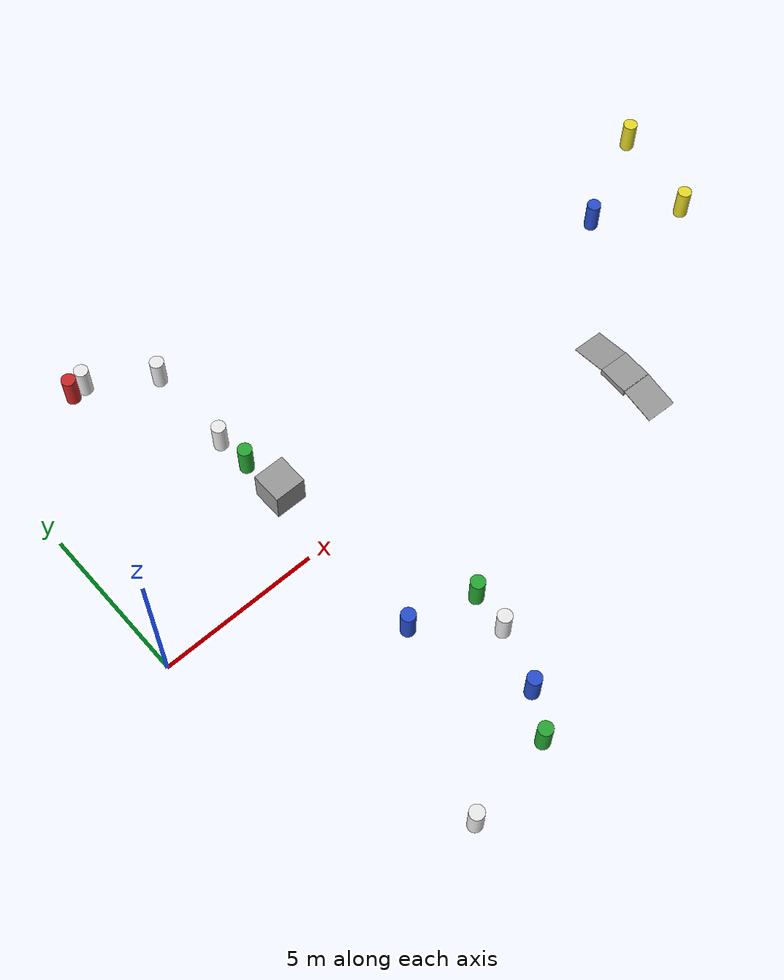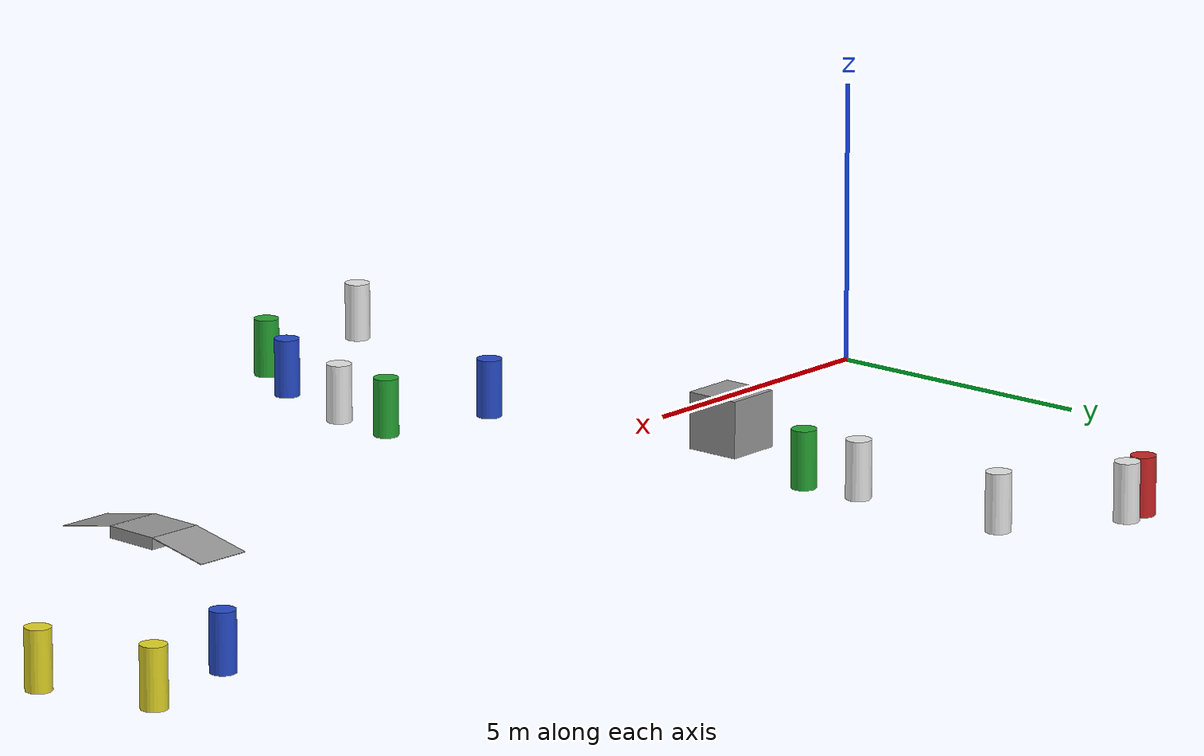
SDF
<sdf version="1.10">
 <world name="IGVC_AutoNav">
  <model name="barrel">
   <link name="link">
    <inertial>
     <mass>1</mass>
     <inertia>
      <ixx>0.14583299999999999</ixx>
      <ixy>0</ixy>
      <ixz>0</ixz>
      <iyy>0.14583299999999999</iyy>
      <iyz>0</iyz>
      <izz>0.125</izz>
     </inertia>
    </inertial>
    <visual name="visual">
     <geometry><cylinder><radius>0.222916</radius><length>1.0356700000000001</length></cylinder></geometry>
     <material>
      <script><name>Gazebo/Blue</name><uri>file://media/materials/scripts/gazebo.material</uri></script>
      <shader type="pixel"/>
     </material>
    </visual>
    <collision name="collision">
     <geometry><cylinder><radius>0.222916</radius><length>1.0356700000000001</length></cylinder></geometry>
     <surface>
      <friction>
       <ode><mu>1</mu><mu2>1</mu2><fdir1>0 0 0</fdir1><slip1>0</slip1><slip2>0</slip2></ode>
       <torsional>
        <coefficient>1</coefficient>
        <patch_radius>0</patch_radius>
        <surface_radius>0</surface_radius>
        <use_patch_radius>true</use_patch_radius>
        <ode><slip>0</slip></ode>
       </torsional>
      </friction>
      <bounce><restitution_coefficient>0</restitution_coefficient><threshold>1000000</threshold></bounce>
      <contact>
       <collide_without_contact>false</collide_without_contact>
       <collide_without_contact_bitmask>1</collide_without_contact_bitmask>
       <collide_bitmask>1</collide_bitmask>
       <ode>
        <soft_cfm>0</soft_cfm>
        <soft_erp>0.20000000000000001</soft_erp>
        <kp>10000000000000</kp>
        <kd>1</kd>
        <max_vel>0.01</max_vel>
        <min_depth>0</min_depth>
       </ode>
       <bullet>
        <split_impulse>true</split_impulse>
        <split_impulse_penetration_threshold>-0.01</split_impulse_penetration_threshold>
        <soft_cfm>0</soft_cfm>
        <soft_erp>0.20000000000000001</soft_erp>
        <kp>10000000000000</kp>
        <kd>1</kd>
       </bullet>
      </contact>
     </surface>
    </collision>
   </link>
   <static>false</static>
   <pose>7.06515 -6.9198300000000001 0.10701116576754102 7.4044332592144963e-18 1.7219624782401964e-16 1.8080497611149083e-19</pose>
  </model>
  <model name="barrel_0">
   <link name="link">
    <inertial>
     <mass>1</mass>
     <inertia>
      <ixx>0.14583299999999999</ixx>
      <ixy>0</ixy>
      <ixz>0</ixz>
      <iyy>0.14583299999999999</iyy>
      <iyz>0</iyz>
      <izz>0.125</izz>
     </inertia>
    </inertial>
    <visual name="visual">
     <geometry><cylinder><radius>0.222916</radius><length>1.0356700000000001</length></cylinder></geometry>
     <material>
      <script><name>Gazebo/Green</name><uri>file://media/materials/scripts/gazebo.material</uri></script>
      <shader type="pixel"/>
     </material>
    </visual>
    <collision name="collision">
     <geometry><cylinder><radius>0.222916</radius><length>1.0356700000000001</length></cylinder></geometry>
     <surface>
      <friction>
       <ode><mu>1</mu><mu2>1</mu2><fdir1>0 0 0</fdir1><slip1>0</slip1><slip2>0</slip2></ode>
       <torsional>
        <coefficient>1</coefficient>
        <patch_radius>0</patch_radius>
        <surface_radius>0</surface_radius>
        <use_patch_radius>true</use_patch_radius>
        <ode><slip>0</slip></ode>
       </torsional>
      </friction>
      <bounce><restitution_coefficient>0</restitution_coefficient><threshold>1000000</threshold></bounce>
      <contact>
       <collide_without_contact>false</collide_without_contact>
       <collide_without_contact_bitmask>1</collide_without_contact_bitmask>
       <collide_bitmask>1</collide_bitmask>
       <ode>
        <soft_cfm>0</soft_cfm>
        <soft_erp>0.20000000000000001</soft_erp>
        <kp>10000000000000</kp>
        <kd>1</kd>
        <max_vel>0.01</max_vel>
        <min_depth>0</min_depth>
       </ode>
       <bullet>
        <split_impulse>true</split_impulse>
        <split_impulse_penetration_threshold>-0.01</split_impulse_penetration_threshold>
        <soft_cfm>0</soft_cfm>
        <soft_erp>0.20000000000000001</soft_erp>
        <kp>10000000000000</kp>
        <kd>1</kd>
       </bullet>
      </contact>
     </surface>
    </collision>
   </link>
   <static>false</static>
   <pose>6.2997100000000001 -8.1233199999999997 0.1070131657332605 -1.157209345317784e-16 4.7496134980464341e-17 1.1440392333610301e-18</pose>
  </model>
  <model name="barrel_3">
   <link name="link">
    <inertial>
     <mass>1</mass>
     <inertia>
      <ixx>0.14583299999999999</ixx>
      <ixy>0</ixy>
      <ixz>0</ixz>
      <iyy>0.14583299999999999</iyy>
      <iyz>0</iyz>
      <izz>0.125</izz>
     </inertia>
    </inertial>
    <visual name="visual">
     <geometry><cylinder><radius>0.222916</radius><length>1.0356700000000001</length></cylinder></geometry>
     <material>
      <script><name>Gazebo/White</name><uri>file://media/materials/scripts/gazebo.material</uri></script>
      <shader type="pixel"/>
     </material>
    </visual>
    <collision name="collision">
     <geometry><cylinder><radius>0.222916</radius><length>1.0356700000000001</length></cylinder></geometry>
     <surface>
      <friction>
       <ode><mu>1</mu><mu2>1</mu2><fdir1>0 0 0</fdir1><slip1>0</slip1><slip2>0</slip2></ode>
       <torsional>
        <coefficient>1</coefficient>
        <patch_radius>0</patch_radius>
        <surface_radius>0</surface_radius>
        <use_patch_radius>true</use_patch_radius>
        <ode><slip>0</slip></ode>
       </torsional>
      </friction>
      <bounce><restitution_coefficient>0</restitution_coefficient><threshold>1000000</threshold></bounce>
      <contact>
       <collide_without_contact>false</collide_without_contact>
       <collide_without_contact_bitmask>1</collide_without_contact_bitmask>
       <collide_bitmask>1</collide_bitmask>
       <ode>
        <soft_cfm>0</soft_cfm>
        <soft_erp>0.20000000000000001</soft_erp>
        <kp>10000000000000</kp>
        <kd>1</kd>
        <max_vel>0.01</max_vel>
        <min_depth>0</min_depth>
       </ode>
       <bullet>
        <split_impulse>true</split_impulse>
        <split_impulse_penetration_threshold>-0.01</split_impulse_penetration_threshold>
        <soft_cfm>0</soft_cfm>
        <soft_erp>0.20000000000000001</soft_erp>
        <kp>10000000000000</kp>
        <kd>1</kd>
       </bullet>
      </contact>
     </surface>
    </collision>
   </link>
   <static>false</static>
   <pose>3.4230399999999999 -8.5684799999999992 0.10701516569897998 -1.1385295535115525e-16 -1.0134606897383649e-16 1.4112806861779908e-19</pose>
  </model>
  <model name="barrel_24">
   <link name="link">
    <inertial>
     <mass>1</mass>
     <inertia>
      <ixx>0.14583299999999999</ixx>
      <ixy>0</ixy>
      <ixz>0</ixz>
      <iyy>0.14583299999999999</iyy>
      <iyz>0</iyz>
      <izz>0.125</izz>
     </inertia>
    </inertial>
    <visual name="visual">
     <geometry><cylinder><radius>0.222916</radius><length>1.0356700000000001</length></cylinder></geometry>
     <material>
      <script><name>Gazebo/White</name><uri>file://media/materials/scripts/gazebo.material</uri></script>
      <shader type="pixel"/>
     </material>
    </visual>
    <collision name="collision">
     <geometry><cylinder><radius>0.222916</radius><length>1.0356700000000001</length></cylinder></geometry>
     <surface>
      <friction>
       <ode><mu>1</mu><mu2>1</mu2><fdir1>0 0 0</fdir1><slip1>0</slip1><slip2>0</slip2></ode>
       <torsional>
        <coefficient>1</coefficient>
        <patch_radius>0</patch_radius>
        <surface_radius>0</surface_radius>
        <use_patch_radius>true</use_patch_radius>
        <ode><slip>0</slip></ode>
       </torsional>
      </friction>
      <bounce><restitution_coefficient>0</restitution_coefficient><threshold>1000000</threshold></bounce>
      <contact>
       <collide_without_contact>false</collide_without_contact>
       <collide_without_contact_bitmask>1</collide_without_contact_bitmask>
       <collide_bitmask>1</collide_bitmask>
       <ode>
        <soft_cfm>0</soft_cfm>
        <soft_erp>0.20000000000000001</soft_erp>
        <kp>10000000000000</kp>
        <kd>1</kd>
        <max_vel>0.01</max_vel>
        <min_depth>0</min_depth>
       </ode>
       <bullet>
        <split_impulse>true</split_impulse>
        <split_impulse_penetration_threshold>-0.01</split_impulse_penetration_threshold>
        <soft_cfm>0</soft_cfm>
        <soft_erp>0.20000000000000001</soft_erp>
        <kp>10000000000000</kp>
        <kd>1</kd>
       </bullet>
      </contact>
     </surface>
    </collision>
   </link>
   <static>false</static>
   <pose>5.5689799999999998 7.7809699999999999 0.10704316521905269 -9.7909261086596481e-17 -1.6874608648344901e-16 3.6073992035923793e-19</pose>
  </model>
  <model name="barrel_27">
   <link name="link">
    <inertial>
     <mass>1</mass>
     <inertia>
      <ixx>0.14583299999999999</ixx>
      <ixy>0</ixy>
      <ixz>0</ixz>
      <iyy>0.14583299999999999</iyy>
      <iyz>0</iyz>
      <izz>0.125</izz>
     </inertia>
    </inertial>
    <visual name="visual">
     <geometry><cylinder><radius>0.222916</radius><length>1.0356700000000001</length></cylinder></geometry>
     <material>
      <script><name>Gazebo/Red</name><uri>file://media/materials/scripts/gazebo.material</uri></script>
      <shader type="pixel"/>
     </material>
    </visual>
    <collision name="collision">
     <geometry><cylinder><radius>0.222916</radius><length>1.0356700000000001</length></cylinder></geometry>
     <surface>
      <friction>
       <ode><mu>1</mu><mu2>1</mu2><fdir1>0 0 0</fdir1><slip1>0</slip1><slip2>0</slip2></ode>
       <torsional>
        <coefficient>1</coefficient>
        <patch_radius>0</patch_radius>
        <surface_radius>0</surface_radius>
        <use_patch_radius>true</use_patch_radius>
        <ode><slip>0</slip></ode>
       </torsional>
      </friction>
      <bounce><restitution_coefficient>0</restitution_coefficient><threshold>1000000</threshold></bounce>
      <contact>
       <collide_without_contact>false</collide_without_contact>
       <collide_without_contact_bitmask>1</collide_without_contact_bitmask>
       <collide_bitmask>1</collide_bitmask>
       <ode>
        <soft_cfm>0</soft_cfm>
        <soft_erp>0.20000000000000001</soft_erp>
        <kp>10000000000000</kp>
        <kd>1</kd>
        <max_vel>0.01</max_vel>
        <min_depth>0</min_depth>
       </ode>
       <bullet>
        <split_impulse>true</split_impulse>
        <split_impulse_penetration_threshold>-0.01</split_impulse_penetration_threshold>
        <soft_cfm>0</soft_cfm>
        <soft_erp>0.20000000000000001</soft_erp>
        <kp>10000000000000</kp>
        <kd>1</kd>
       </bullet>
      </contact>
     </surface>
    </collision>
   </link>
   <static>false</static>
   <pose>3.2216999999999998 9.0043100000000003 0.10704716515049165 -2.1990650078509022e-16 -2.2904649029452029e-17 1.7148494676408444e-18</pose>
  </model>
  <model name="barrel_28">
   <link name="link">
    <inertial>
     <mass>1</mass>
     <inertia>
      <ixx>0.14583299999999999</ixx>
      <ixy>0</ixy>
      <ixz>0</ixz>
      <iyy>0.14583299999999999</iyy>
      <iyz>0</iyz>
      <izz>0.125</izz>
     </inertia>
    </inertial>
    <visual name="visual">
     <geometry><cylinder><radius>0.222916</radius><length>1.0356700000000001</length></cylinder></geometry>
     <material>
      <script><name>Gazebo/White</name><uri>file://media/materials/scripts/gazebo.material</uri></script>
      <shader type="pixel"/>
     </material>
    </visual>
    <collision name="collision">
     <geometry><cylinder><radius>0.222916</radius><length>1.0356700000000001</length></cylinder></geometry>
     <surface>
      <friction>
       <ode><mu>1</mu><mu2>1</mu2><fdir1>0 0 0</fdir1><slip1>0</slip1><slip2>0</slip2></ode>
       <torsional>
        <coefficient>1</coefficient>
        <patch_radius>0</patch_radius>
        <surface_radius>0</surface_radius>
        <use_patch_radius>true</use_patch_radius>
        <ode><slip>0</slip></ode>
       </torsional>
      </friction>
      <bounce><restitution_coefficient>0</restitution_coefficient><threshold>1000000</threshold></bounce>
      <contact>
       <collide_without_contact>false</collide_without_contact>
       <collide_without_contact_bitmask>1</collide_without_contact_bitmask>
       <collide_bitmask>1</collide_bitmask>
       <ode>
        <soft_cfm>0</soft_cfm>
        <soft_erp>0.20000000000000001</soft_erp>
        <kp>10000000000000</kp>
        <kd>1</kd>
        <max_vel>0.01</max_vel>
        <min_depth>0</min_depth>
       </ode>
       <bullet>
        <split_impulse>true</split_impulse>
        <split_impulse_penetration_threshold>-0.01</split_impulse_penetration_threshold>
        <soft_cfm>0</soft_cfm>
        <soft_erp>0.20000000000000001</soft_erp>
        <kp>10000000000000</kp>
        <kd>1</kd>
       </bullet>
      </contact>
     </surface>
    </collision>
   </link>
   <static>false</static>
   <pose>3.68913 9.0244900000000001 0.10704916511621113 -1.2033052093565336e-16 -2.3522137488015187e-16 -3.1454808388678424e-19</pose>
  </model>
  <model name="barrel_30">
   <link name="link">
    <inertial>
     <mass>1</mass>
     <inertia>
      <ixx>0.14583299999999999</ixx>
      <ixy>0</ixy>
      <ixz>0</ixz>
      <iyy>0.14583299999999999</iyy>
      <iyz>0</iyz>
      <izz>0.125</izz>
     </inertia>
    </inertial>
    <visual name="visual">
     <geometry><cylinder><radius>0.222916</radius><length>1.0356700000000001</length></cylinder></geometry>
     <material>
      <script><name>Gazebo/Green</name><uri>file://media/materials/scripts/gazebo.material</uri></script>
      <shader type="pixel"/>
     </material>
    </visual>
    <collision name="collision">
     <geometry><cylinder><radius>0.222916</radius><length>1.0356700000000001</length></cylinder></geometry>
     <surface>
      <friction>
       <ode><mu>1</mu><mu2>1</mu2><fdir1>0 0 0</fdir1><slip1>0</slip1><slip2>0</slip2></ode>
       <torsional>
        <coefficient>1</coefficient>
        <patch_radius>0</patch_radius>
        <surface_radius>0</surface_radius>
        <use_patch_radius>true</use_patch_radius>
        <ode><slip>0</slip></ode>
       </torsional>
      </friction>
      <bounce><restitution_coefficient>0</restitution_coefficient><threshold>1000000</threshold></bounce>
      <contact>
       <collide_without_contact>false</collide_without_contact>
       <collide_without_contact_bitmask>1</collide_without_contact_bitmask>
       <collide_bitmask>1</collide_bitmask>
       <ode>
        <soft_cfm>0</soft_cfm>
        <soft_erp>0.20000000000000001</soft_erp>
        <kp>10000000000000</kp>
        <kd>1</kd>
        <max_vel>0.01</max_vel>
        <min_depth>0</min_depth>
       </ode>
       <bullet>
        <split_impulse>true</split_impulse>
        <split_impulse_penetration_threshold>-0.01</split_impulse_penetration_threshold>
        <soft_cfm>0</soft_cfm>
        <soft_erp>0.20000000000000001</soft_erp>
        <kp>10000000000000</kp>
        <kd>1</kd>
       </bullet>
      </contact>
     </surface>
    </collision>
   </link>
   <static>false</static>
   <pose>7.8527100000000001 -3.8606400000000001 0.1070511650819306 -1.0134378886714929e-16 1.2772463460968596e-16 3.3731103154258741e-19</pose>
  </model>
  <model name="barrel_31">
   <link name="link">
    <inertial>
     <mass>1</mass>
     <inertia>
      <ixx>0.14583299999999999</ixx>
      <ixy>0</ixy>
      <ixz>0</ixz>
      <iyy>0.14583299999999999</iyy>
      <iyz>0</iyz>
      <izz>0.125</izz>
     </inertia>
    </inertial>
    <visual name="visual">
     <geometry><cylinder><radius>0.222916</radius><length>1.0356700000000001</length></cylinder></geometry>
     <material>
      <script><name>Gazebo/Green</name><uri>file://media/materials/scripts/gazebo.material</uri></script>
      <shader type="pixel"/>
     </material>
    </visual>
    <collision name="collision">
     <geometry><cylinder><radius>0.222916</radius><length>1.0356700000000001</length></cylinder></geometry>
     <surface>
      <friction>
       <ode><mu>1</mu><mu2>1</mu2><fdir1>0 0 0</fdir1><slip1>0</slip1><slip2>0</slip2></ode>
       <torsional>
        <coefficient>1</coefficient>
        <patch_radius>0</patch_radius>
        <surface_radius>0</surface_radius>
        <use_patch_radius>true</use_patch_radius>
        <ode><slip>0</slip></ode>
       </torsional>
      </friction>
      <bounce><restitution_coefficient>0</restitution_coefficient><threshold>1000000</threshold></bounce>
      <contact>
       <collide_without_contact>false</collide_without_contact>
       <collide_without_contact_bitmask>1</collide_without_contact_bitmask>
       <collide_bitmask>1</collide_bitmask>
       <ode>
        <soft_cfm>0</soft_cfm>
        <soft_erp>0.20000000000000001</soft_erp>
        <kp>10000000000000</kp>
        <kd>1</kd>
        <max_vel>0.01</max_vel>
        <min_depth>0</min_depth>
       </ode>
       <bullet>
        <split_impulse>true</split_impulse>
        <split_impulse_penetration_threshold>-0.01</split_impulse_penetration_threshold>
        <soft_cfm>0</soft_cfm>
        <soft_erp>0.20000000000000001</soft_erp>
        <kp>10000000000000</kp>
        <kd>1</kd>
       </bullet>
      </contact>
     </surface>
    </collision>
   </link>
   <static>false</static>
   <pose>5.6604799999999997 3.6798299999999999 0.10705316504765007 2.346735457369228e-17 2.1156079624572608e-16 -4.2693276620193834e-19</pose>
  </model>
  <model name="barrel_32">
   <link name="link">
    <inertial>
     <mass>1</mass>
     <inertia>
      <ixx>0.14583299999999999</ixx>
      <ixy>0</ixy>
      <ixz>0</ixz>
      <iyy>0.14583299999999999</iyy>
      <iyz>0</iyz>
      <izz>0.125</izz>
     </inertia>
    </inertial>
    <visual name="visual">
     <geometry><cylinder><radius>0.222916</radius><length>1.0356700000000001</length></cylinder></geometry>
     <material>
      <script><name>Gazebo/Yellow</name><uri>file://media/materials/scripts/gazebo.material</uri></script>
      <shader type="pixel"/>
     </material>
    </visual>
    <collision name="collision">
     <geometry><cylinder><radius>0.222916</radius><length>1.0356700000000001</length></cylinder></geometry>
     <surface>
      <friction>
       <ode><mu>1</mu><mu2>1</mu2><fdir1>0 0 0</fdir1><slip1>0</slip1><slip2>0</slip2></ode>
       <torsional>
        <coefficient>1</coefficient>
        <patch_radius>0</patch_radius>
        <surface_radius>0</surface_radius>
        <use_patch_radius>true</use_patch_radius>
        <ode><slip>0</slip></ode>
       </torsional>
      </friction>
      <bounce><restitution_coefficient>0</restitution_coefficient><threshold>1000000</threshold></bounce>
      <contact>
       <collide_without_contact>false</collide_without_contact>
       <collide_without_contact_bitmask>1</collide_without_contact_bitmask>
       <collide_bitmask>1</collide_bitmask>
       <ode>
        <soft_cfm>0</soft_cfm>
        <soft_erp>0.20000000000000001</soft_erp>
        <kp>10000000000000</kp>
        <kd>1</kd>
        <max_vel>0.01</max_vel>
        <min_depth>0</min_depth>
       </ode>
       <bullet>
        <split_impulse>true</split_impulse>
        <split_impulse_penetration_threshold>-0.01</split_impulse_penetration_threshold>
        <soft_cfm>0</soft_cfm>
        <soft_erp>0.20000000000000001</soft_erp>
        <kp>10000000000000</kp>
        <kd>1</kd>
       </bullet>
      </contact>
     </surface>
    </collision>
   </link>
   <static>false</static>
   <pose>22.668218612670898 4.7639598846435547 0.51783489063736232 8.5720337616812727e-17 7.122465466331042e-17 -9.2432905968919134e-20</pose>
  </model>
  <model name="barrel_33">
   <link name="link">
    <inertial>
     <mass>1</mass>
     <inertia>
      <ixx>0.14583299999999999</ixx>
      <ixy>0</ixy>
      <ixz>0</ixz>
      <iyy>0.14583299999999999</iyy>
      <iyz>0</iyz>
      <izz>0.125</izz>
     </inertia>
    </inertial>
    <visual name="visual">
     <geometry><cylinder><radius>0.222916</radius><length>1.0356700000000001</length></cylinder></geometry>
     <material>
      <script><name>Gazebo/White</name><uri>file://media/materials/scripts/gazebo.material</uri></script>
      <shader type="pixel"/>
     </material>
    </visual>
    <collision name="collision">
     <geometry><cylinder><radius>0.222916</radius><length>1.0356700000000001</length></cylinder></geometry>
     <surface>
      <friction>
       <ode><mu>1</mu><mu2>1</mu2><fdir1>0 0 0</fdir1><slip1>0</slip1><slip2>0</slip2></ode>
       <torsional>
        <coefficient>1</coefficient>
        <patch_radius>0</patch_radius>
        <surface_radius>0</surface_radius>
        <use_patch_radius>true</use_patch_radius>
        <ode><slip>0</slip></ode>
       </torsional>
      </friction>
      <bounce><restitution_coefficient>0</restitution_coefficient><threshold>1000000</threshold></bounce>
      <contact>
       <collide_without_contact>false</collide_without_contact>
       <collide_without_contact_bitmask>1</collide_without_contact_bitmask>
       <collide_bitmask>1</collide_bitmask>
       <ode>
        <soft_cfm>0</soft_cfm>
        <soft_erp>0.20000000000000001</soft_erp>
        <kp>10000000000000</kp>
        <kd>1</kd>
        <max_vel>0.01</max_vel>
        <min_depth>0</min_depth>
       </ode>
       <bullet>
        <split_impulse>true</split_impulse>
        <split_impulse_penetration_threshold>-0.01</split_impulse_penetration_threshold>
        <soft_cfm>0</soft_cfm>
        <soft_erp>0.20000000000000001</soft_erp>
        <kp>10000000000000</kp>
        <kd>1</kd>
       </bullet>
      </contact>
     </surface>
    </collision>
   </link>
   <static>false</static>
   <pose>7.7082499999999996 -5.0892799999999996 0.10705916494480852 -5.2259916950885326e-17 -2.9983246795244489e-17 -1.4600913282017305e-20</pose>
  </model>
  <model name="barrel_34">
   <link name="link">
    <inertial>
     <mass>1</mass>
     <inertia>
      <ixx>0.14583299999999999</ixx>
      <ixy>0</ixy>
      <ixz>0</ixz>
      <iyy>0.14583299999999999</iyy>
      <iyz>0</iyz>
      <izz>0.125</izz>
     </inertia>
    </inertial>
    <visual name="visual">
     <geometry><cylinder><radius>0.222916</radius><length>1.0356700000000001</length></cylinder></geometry>
     <material>
      <script><name>Gazebo/Blue</name><uri>file://media/materials/scripts/gazebo.material</uri></script>
      <shader type="pixel"/>
     </material>
    </visual>
    <collision name="collision">
     <geometry><cylinder><radius>0.222916</radius><length>1.0356700000000001</length></cylinder></geometry>
     <surface>
      <friction>
       <ode><mu>1</mu><mu2>1</mu2><fdir1>0 0 0</fdir1><slip1>0</slip1><slip2>0</slip2></ode>
       <torsional>
        <coefficient>1</coefficient>
        <patch_radius>0</patch_radius>
        <surface_radius>0</surface_radius>
        <use_patch_radius>true</use_patch_radius>
        <ode><slip>0</slip></ode>
       </torsional>
      </friction>
      <bounce><restitution_coefficient>0</restitution_coefficient><threshold>1000000</threshold></bounce>
      <contact>
       <collide_without_contact>false</collide_without_contact>
       <collide_without_contact_bitmask>1</collide_without_contact_bitmask>
       <collide_bitmask>1</collide_bitmask>
       <ode>
        <soft_cfm>0</soft_cfm>
        <soft_erp>0.20000000000000001</soft_erp>
        <kp>10000000000000</kp>
        <kd>1</kd>
        <max_vel>0.01</max_vel>
        <min_depth>0</min_depth>
       </ode>
       <bullet>
        <split_impulse>true</split_impulse>
        <split_impulse_penetration_threshold>-0.01</split_impulse_penetration_threshold>
        <soft_cfm>0</soft_cfm>
        <soft_erp>0.20000000000000001</soft_erp>
        <kp>10000000000000</kp>
        <kd>1</kd>
       </bullet>
      </contact>
     </surface>
    </collision>
   </link>
   <static>false</static>
   <pose>19.672090530395508 3.3907599449157715 0.10639618037907772 -8.1528462080219881e-17 -9.9859947831508904e-17 7.2666197651592393e-19</pose>
  </model>
  <model name="barrel_36">
   <link name="link">
    <inertial>
     <mass>1</mass>
     <inertia>
      <ixx>0.14583299999999999</ixx>
      <ixy>0</ixy>
      <ixz>0</ixz>
      <iyy>0.14583299999999999</iyy>
      <iyz>0</iyz>
      <izz>0.125</izz>
     </inertia>
    </inertial>
    <visual name="visual">
     <geometry><cylinder><radius>0.222916</radius><length>1.0356700000000001</length></cylinder></geometry>
     <material>
      <script><name>Gazebo/Blue</name><uri>file://media/materials/scripts/gazebo.material</uri></script>
      <shader type="pixel"/>
     </material>
    </visual>
    <collision name="collision">
     <geometry><cylinder><radius>0.222916</radius><length>1.0356700000000001</length></cylinder></geometry>
     <surface>
      <friction>
       <ode><mu>1</mu><mu2>1</mu2><fdir1>0 0 0</fdir1><slip1>0</slip1><slip2>0</slip2></ode>
       <torsional>
        <coefficient>1</coefficient>
        <patch_radius>0</patch_radius>
        <surface_radius>0</surface_radius>
        <use_patch_radius>true</use_patch_radius>
        <ode><slip>0</slip></ode>
       </torsional>
      </friction>
      <bounce><restitution_coefficient>0</restitution_coefficient><threshold>1000000</threshold></bounce>
      <contact>
       <collide_without_contact>false</collide_without_contact>
       <collide_without_contact_bitmask>1</collide_without_contact_bitmask>
       <collide_bitmask>1</collide_bitmask>
       <ode>
        <soft_cfm>0</soft_cfm>
        <soft_erp>0.20000000000000001</soft_erp>
        <kp>10000000000000</kp>
        <kd>1</kd>
        <max_vel>0.01</max_vel>
        <min_depth>0</min_depth>
       </ode>
       <bullet>
        <split_impulse>true</split_impulse>
        <split_impulse_penetration_threshold>-0.01</split_impulse_penetration_threshold>
        <soft_cfm>0</soft_cfm>
        <soft_erp>0.20000000000000001</soft_erp>
        <kp>10000000000000</kp>
        <kd>1</kd>
       </bullet>
      </contact>
     </surface>
    </collision>
   </link>
   <static>false</static>
   <pose>5.7568200000000003 -3.3306300000000002 0.10706516484196696 -1.7928814460256389e-17 2.4456127389231814e-16 8.4147951473582927e-19</pose>
  </model>
  <model name="barrel_38">
   <link name="link">
    <inertial>
     <mass>1</mass>
     <inertia>
      <ixx>0.14583299999999999</ixx>
      <ixy>0</ixy>
      <ixz>0</ixz>
      <iyy>0.14583299999999999</iyy>
      <iyz>0</iyz>
      <izz>0.125</izz>
     </inertia>
    </inertial>
    <visual name="visual">
     <geometry><cylinder><radius>0.222916</radius><length>1.0356700000000001</length></cylinder></geometry>
     <material>
      <script><name>Gazebo/White</name><uri>file://media/materials/scripts/gazebo.material</uri></script>
      <shader type="pixel"/>
     </material>
    </visual>
    <collision name="collision">
     <geometry><cylinder><radius>0.222916</radius><length>1.0356700000000001</length></cylinder></geometry>
     <surface>
      <friction>
       <ode><mu>1</mu><mu2>1</mu2><fdir1>0 0 0</fdir1><slip1>0</slip1><slip2>0</slip2></ode>
       <torsional>
        <coefficient>1</coefficient>
        <patch_radius>0</patch_radius>
        <surface_radius>0</surface_radius>
        <use_patch_radius>true</use_patch_radius>
        <ode><slip>0</slip></ode>
       </torsional>
      </friction>
      <bounce><restitution_coefficient>0</restitution_coefficient><threshold>1000000</threshold></bounce>
      <contact>
       <collide_without_contact>false</collide_without_contact>
       <collide_without_contact_bitmask>1</collide_without_contact_bitmask>
       <collide_bitmask>1</collide_bitmask>
       <ode>
        <soft_cfm>0</soft_cfm>
        <soft_erp>0.20000000000000001</soft_erp>
        <kp>10000000000000</kp>
        <kd>1</kd>
        <max_vel>0.01</max_vel>
        <min_depth>0</min_depth>
       </ode>
       <bullet>
        <split_impulse>true</split_impulse>
        <split_impulse_penetration_threshold>-0.01</split_impulse_penetration_threshold>
        <soft_cfm>0</soft_cfm>
        <soft_erp>0.20000000000000001</soft_erp>
        <kp>10000000000000</kp>
        <kd>1</kd>
       </bullet>
      </contact>
     </surface>
    </collision>
   </link>
   <static>false</static>
   <pose>5.56419 4.7880200000000004 0.10706916477340592 -1.2961627300050082e-16 5.8131697926756811e-17 9.8499603322862302e-19</pose>
  </model>
  <model name="barrel_39">
   <link name="link">
    <inertial>
     <mass>1</mass>
     <inertia>
      <ixx>0.14583299999999999</ixx>
      <ixy>0</ixy>
      <ixz>0</ixz>
      <iyy>0.14583299999999999</iyy>
      <iyz>0</iyz>
      <izz>0.125</izz>
     </inertia>
    </inertial>
    <visual name="visual">
     <geometry><cylinder><radius>0.222916</radius><length>1.0356700000000001</length></cylinder></geometry>
     <material>
      <script><name>Gazebo/Yellow</name><uri>file://media/materials/scripts/gazebo.material</uri></script>
      <shader type="pixel"/>
     </material>
    </visual>
    <collision name="collision">
     <geometry><cylinder><radius>0.222916</radius><length>1.0356700000000001</length></cylinder></geometry>
     <surface>
      <friction>
       <ode><mu>1</mu><mu2>1</mu2><fdir1>0 0 0</fdir1><slip1>0</slip1><slip2>0</slip2></ode>
       <torsional>
        <coefficient>1</coefficient>
        <patch_radius>0</patch_radius>
        <surface_radius>0</surface_radius>
        <use_patch_radius>true</use_patch_radius>
        <ode><slip>0</slip></ode>
       </torsional>
      </friction>
      <bounce><restitution_coefficient>0</restitution_coefficient><threshold>1000000</threshold></bounce>
      <contact>
       <collide_without_contact>false</collide_without_contact>
       <collide_without_contact_bitmask>1</collide_without_contact_bitmask>
       <collide_bitmask>1</collide_bitmask>
       <ode>
        <soft_cfm>0</soft_cfm>
        <soft_erp>0.20000000000000001</soft_erp>
        <kp>10000000000000</kp>
        <kd>1</kd>
        <max_vel>0.01</max_vel>
        <min_depth>0</min_depth>
       </ode>
       <bullet>
        <split_impulse>true</split_impulse>
        <split_impulse_penetration_threshold>-0.01</split_impulse_penetration_threshold>
        <soft_cfm>0</soft_cfm>
        <soft_erp>0.20000000000000001</soft_erp>
        <kp>10000000000000</kp>
        <kd>1</kd>
       </bullet>
      </contact>
     </surface>
    </collision>
   </link>
   <static>false</static>
   <pose>22.23097038269043 1.8489799499511719 0.1064681950240941 6.7414476381857117e-17 -7.3303656264288414e-17 4.0062444578446532e-20</pose>
  </model>
  <model name="unit_box">
   <pose>5.6846100000000002 2.0898400000000001 0.49999999990200172 -2.9209403956385251e-21 2.5548142992668137e-21 -3.4606715145250023e-22</pose>
   <link name="link">
    <inertial>
     <mass>1</mass>
     <inertia>
      <ixx>0.16666700000000001</ixx>
      <ixy>0</ixy>
      <ixz>0</ixz>
      <iyy>0.16666700000000001</iyy>
      <iyz>0</iyz>
      <izz>0.16666700000000001</izz>
     </inertia>
    </inertial>
    <collision name="collision"><geometry><box><size>0.99999199999999999 1 1</size></box></geometry></collision>
    <visual name="visual">
     <geometry><box><size>0.99999199999999999 1 1</size></box></geometry>
     <material>
      <script><name>Gazebo/Grey</name><uri>file://media/materials/scripts/gazebo.material</uri></script>
     </material>
    </visual>
   </link>
   <static>false</static>
  </model>
  <model name="Construction Barrel_1_clone_0">
   <link name="link">
    <inertial>
     <pose>0 0 0.40000000000000002 0 0 0</pose>
     <mass>500</mass>
     <inertia>
      <ixx>51.209600000000002</ixx>
      <iyy>51.209600000000002</iyy>
      <izz>25</izz>
      <ixy>0</ixy>
      <ixz>0</ixz>
      <iyz>0</iyz>
     </inertia>
    </inertial>
    <collision name="collision">
     <geometry><mesh><uri>model://construction_barrel/meshes/construction_barrel.dae</uri></mesh></geometry>
    </collision>
   </link>
   <pose>18.563100000040048 -22.376499999986766 -1.6654169406499507e-07 2.3453417157574313e-07 -2.8690890469967088e-07 0.0062959999182704406</pose>
   <static>false</static>
  </model>
  <model name="RAMP2">
   <link name="link_0">
    <inertial>
     <mass>100</mass>
     <inertia>
      <ixx>8.69346</ixx>
      <ixy>0</ixy>
      <ixz>0</ixz>
      <iyy>8.69346</iyy>
      <iyz>0</iyz>
      <izz>16.666699999999999</izz>
     </inertia>
    </inertial>
    <pose>0.022429999999999999 -0.0047190000000000001 0.0083920000000000002 0 0 -0.048312000000000001</pose>
    <visual name="visual">
     <geometry><box><size>1 1 0.20788300000000001</size></box></geometry>
     <material>
      <lighting>true</lighting>
      <script><uri>file://media/materials/scripts/gazebo.material</uri><name>Gazebo/Grey</name></script>
      <shader type="pixel"><normal_map>__default__</normal_map></shader>
      <emissive>0 0 0 1</emissive>
      <ambient>0.300000012 0.300000012 0.300000012 1</ambient>
      <diffuse>0.699999988 0.699999988 0.699999988 1</diffuse>
      <specular>0.00999999978 0.00999999978 0.00999999978 1</specular>
     </material>
    </visual>
    <collision name="collision">
     <geometry><box><size>1 1 0.20788300000000001</size></box></geometry>
     <surface>
      <friction>
       <ode><mu>1</mu><mu2>1</mu2><fdir1>0 0 0</fdir1><slip1>0</slip1><slip2>0</slip2></ode>
       <torsional>
        <coefficient>1</coefficient>
        <patch_radius>0</patch_radius>
        <surface_radius>0</surface_radius>
        <use_patch_radius>true</use_patch_radius>
        <ode><slip>0</slip></ode>
       </torsional>
      </friction>
      <bounce><restitution_coefficient>0</restitution_coefficient><threshold>1000000</threshold></bounce>
      <contact>
       <collide_without_contact>false</collide_without_contact>
       <collide_without_contact_bitmask>1</collide_without_contact_bitmask>
       <collide_bitmask>1</collide_bitmask>
       <ode>
        <soft_cfm>0</soft_cfm>
        <soft_erp>0.20000000000000001</soft_erp>
        <kp>10000000000000</kp>
        <kd>1</kd>
        <max_vel>0.01</max_vel>
        <min_depth>0</min_depth>
       </ode>
       <bullet>
        <split_impulse>true</split_impulse>
        <split_impulse_penetration_threshold>-0.01</split_impulse_penetration_threshold>
        <soft_cfm>0</soft_cfm>
        <soft_erp>0.20000000000000001</soft_erp>
        <kp>10000000000000</kp>
        <kd>1</kd>
       </bullet>
      </contact>
     </surface>
    </collision>
   </link>
   <link name="link_1">
    <inertial>
     <mass>50</mass>
     <inertia>
      <ixx>5.7244999999999999</ixx>
      <ixy>0</ixy>
      <ixz>0</ixz>
      <iyy>4.1671199999999997</iyy>
      <iyz>0</iyz>
      <izz>9.8907100000000003</izz>
     </inertia>
    </inertial>
    <pose>-0.028115999999997143 -1.0520500000000004 -0.0041970000000000202 0.19279200000000005 8.6736173798840355e-19 -0.046122999999999983</pose>
    <visual name="visual">
     <geometry><box><size>1 1.17208 0.010432</size></box></geometry>
     <material>
      <lighting>true</lighting>
      <script><uri>file://media/materials/scripts/gazebo.material</uri><name>Gazebo/Grey</name></script>
      <shader type="pixel"><normal_map>__default__</normal_map></shader>
      <emissive>0 0 0 1</emissive>
     </material>
    </visual>
    <collision name="collision">
     <geometry><box><size>1 1.17208 0.010432</size></box></geometry>
     <surface>
      <friction>
       <ode><mu>1</mu><mu2>1</mu2><fdir1>0 0 0</fdir1><slip1>0</slip1><slip2>0</slip2></ode>
       <torsional>
        <coefficient>1</coefficient>
        <patch_radius>0</patch_radius>
        <surface_radius>0</surface_radius>
        <use_patch_radius>true</use_patch_radius>
        <ode><slip>0</slip></ode>
       </torsional>
      </friction>
      <bounce><restitution_coefficient>0</restitution_coefficient><threshold>1000000</threshold></bounce>
      <contact>
       <collide_without_contact>false</collide_without_contact>
       <collide_without_contact_bitmask>1</collide_without_contact_bitmask>
       <collide_bitmask>1</collide_bitmask>
       <ode>
        <soft_cfm>0</soft_cfm>
        <soft_erp>0.20000000000000001</soft_erp>
        <kp>10000000000000</kp>
        <kd>1</kd>
        <max_vel>0.01</max_vel>
        <min_depth>0</min_depth>
       </ode>
       <bullet>
        <split_impulse>true</split_impulse>
        <split_impulse_penetration_threshold>-0.01</split_impulse_penetration_threshold>
        <soft_cfm>0</soft_cfm>
        <soft_erp>0.20000000000000001</soft_erp>
        <kp>10000000000000</kp>
        <kd>1</kd>
       </bullet>
      </contact>
     </surface>
    </collision>
   </link>
   <link name="link_1_clone">
    <inertial>
     <mass>50</mass>
     <inertia>
      <ixx>5.7244999999999999</ixx>
      <ixy>0</ixy>
      <ixz>0</ixz>
      <iyy>4.1671199999999997</iyy>
      <iyz>0</iyz>
      <izz>9.8907100000000003</izz>
     </inertia>
    </inertial>
    <pose>0.064606000000001274 1.0540499999999997 -0.0041960000000000053 -0.19048000000000004 0 -0.046122999999999983</pose>
    <visual name="visual">
     <geometry><box><size>1 1.17208 0.010432</size></box></geometry>
     <material>
      <lighting>true</lighting>
      <script><uri>file://media/materials/scripts/gazebo.material</uri><name>Gazebo/Grey</name></script>
      <shader type="pixel"><normal_map>__default__</normal_map></shader>
      <emissive>0 0 0 1</emissive>
     </material>
    </visual>
    <collision name="collision">
     <geometry><box><size>1 1.17208 0.010432</size></box></geometry>
     <surface>
      <friction>
       <ode><mu>1</mu><mu2>1</mu2><fdir1>0 0 0</fdir1><slip1>0</slip1><slip2>0</slip2></ode>
       <torsional>
        <coefficient>1</coefficient>
        <patch_radius>0</patch_radius>
        <surface_radius>0</surface_radius>
        <use_patch_radius>true</use_patch_radius>
        <ode><slip>0</slip></ode>
       </torsional>
      </friction>
      <bounce><restitution_coefficient>0</restitution_coefficient><threshold>1000000</threshold></bounce>
      <contact>
       <collide_without_contact>false</collide_without_contact>
       <collide_without_contact_bitmask>1</collide_without_contact_bitmask>
       <collide_bitmask>1</collide_bitmask>
       <ode>
        <soft_cfm>0</soft_cfm>
        <soft_erp>0.20000000000000001</soft_erp>
        <kp>10000000000000</kp>
        <kd>1</kd>
        <max_vel>0.01</max_vel>
        <min_depth>0</min_depth>
       </ode>
       <bullet>
        <split_impulse>true</split_impulse>
        <split_impulse_penetration_threshold>-0.01</split_impulse_penetration_threshold>
        <soft_cfm>0</soft_cfm>
        <soft_erp>0.20000000000000001</soft_erp>
        <kp>10000000000000</kp>
        <kd>1</kd>
       </bullet>
      </contact>
     </surface>
    </collision>
   </link>
   <joint name="link_0_JOINT_1" type="fixed">
    <parent>link_0</parent>
    <child>link_1</child>
    <pose>1.3877787807814457e-17 0 8.3266726846886741e-17 0 1.7347234759768071e-18 0</pose>
    <physics>
     <ode>
      <limit><cfm>0</cfm><erp>0.20000000000000001</erp></limit>
      <suspension><cfm>0</cfm><erp>0.20000000000000001</erp></suspension>
     </ode>
    </physics>
   </joint>
   <joint name="link_0_JOINT_2" type="fixed">
    <parent>link_0</parent>
    <child>link_1_clone</child>
    <pose>-3.4694469519536142e-18 -2.2204460492503131e-16 2.7755575615628914e-17 0 0 0</pose>
    <physics>
     <ode>
      <limit><cfm>0</cfm><erp>0.20000000000000001</erp></limit>
      <suspension><cfm>0</cfm><erp>0.20000000000000001</erp></suspension>
     </ode>
    </physics>
   </joint>
   <static>false</static>
   <pose>16.036802274801857 -1.5646306271308286 0.12093784405726135 -0.0004075259779749417 1.8809707670237862e-05 -4.5353544368577654e-09</pose>
  </model>
 </world>
</sdf>
